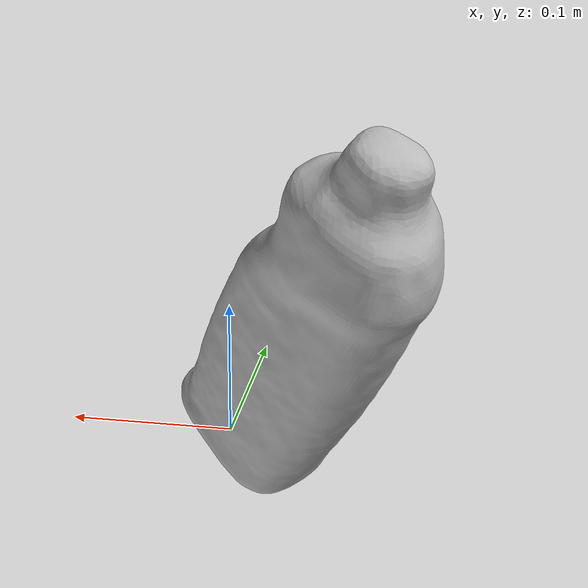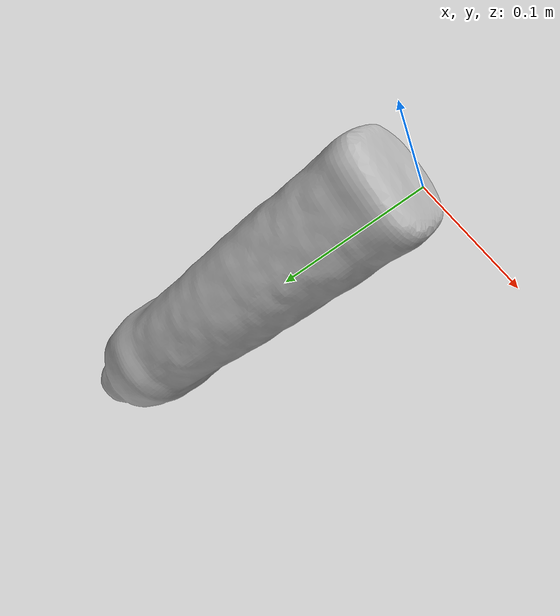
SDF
<?xml version="1.0" ?>
<sdf version="1.5">
  <model name="tomato">
	<static>false</static>
    <pose>0 0 0 0 0 0</pose>
    <link name="link">
      <inertial>
        <mass>0.1</mass>
      </inertial>
      <collision name="collision">
        <geometry>
          <mesh>
            <uri>model://Bleach/meshes/bleach.obj</uri>
            <scale>1 1 1</scale>
          </mesh>
        </geometry>
      </collision>
      <visual name="visual">
        <geometry>
          <mesh>
            <uri>model://Bleach/meshes/bleach.obj</uri>
          </mesh>
        </geometry>
        <material>
        <script>
        <uri>model://Bleach/materials/scripts</uri>
        <uri>model://Bleach/materials/textures</uri>
        <name>bleachMat/Diffuse</name>
        </script>
        </material>
      </visual>
    </link>
  </model>
</sdf>
